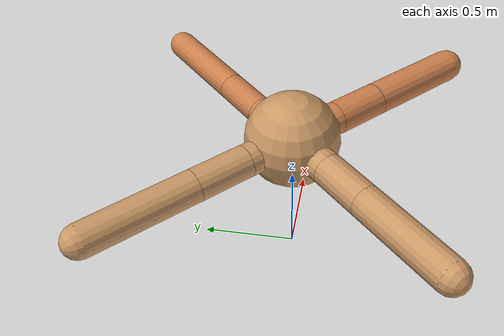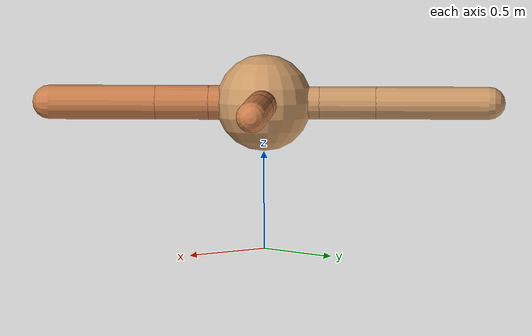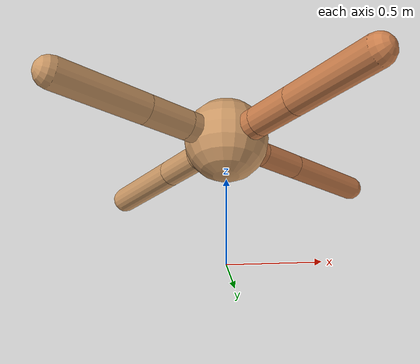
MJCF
<?xml version="1.0" ?>
<mujoco model="ant">

	<compiler angle="degree" coordinate="local" inertiafromgeom="true"/>

	<option integrator="RK4" timestep="0.01"/>

	<custom>

		<numeric data="0.0 0.0 0.55 1.0 0.0 0.0 0.0 0.0 1.0 0.0 -1.0 0.0 -1.0 0.0 1.0" name="init_qpos"/>

	</custom>

	<default>

		<joint armature="1" damping="1" limited="true"/>

		<geom conaffinity="0" condim="3" density="5.0" friction="1.5 0.1 0.1" margin="0.01" rgba="0.8 0.6 0.4 1"/>

	</default>

	<worldbody>

		<body name="torso" pos="0 0 0.75">

			<geom name="torso_geom" pos="0 0 0" size="0.2464734618221793" type="sphere"/>

			<!--joint armature="0" damping="0" limited="false" margin="0.01" name="root" pos="0 0 0" type="free"/-->

			<body name="front_left_leg" pos="0 0 0">

				<geom fromto="0 0 0 0.2 0.2 0" name="aux_1_geom" size="0.07559089030363135" type="capsule" rgba=".8 .5 .3 1"/>

				<body name="aux_1" pos="0.2 0.2 0">

					<joint axis="0 0 1" name="hip_1" pos="0.0 0.0 0.0" range="-40 40" type="hinge"/>

					<geom fromto="0 0 0 0.19031420227976847 0.19031420227976847 0" name="left_leg_geom" size="0.07559089030363135" type="capsule" rgba=".8 .5 .3 1"/>

					<body pos="0.19031420227976847 0.19031420227976847 0" name="front_left_foot">

						<joint axis="-1 1 0" name="ankle_1" pos="0.0 0.0 0.0" range="30 100" type="hinge"/>

						<geom fromto="0 0 0 0.38062840455953695 0.38062840455953695 0" name="left_ankle_geom" size="0.07559089030363135" type="capsule" rgba=".8 .5 .3 1"/>

					</body>

				</body>

			</body>

			<body name="front_right_leg" pos="0 0 0">

				<geom fromto="0 0 0 -0.2 0.2 0" name="aux_2_geom" size="0.08330095990342411" type="capsule"/>

				<body name="aux_2" pos="-0.2 0.2 0">

					<joint axis="0 0 1" name="hip_2" pos="0.0 0.0 0.0" range="-40 40" type="hinge"/>

					<geom fromto="0 0 0 -0.20375535817456494 0.20375535817456494 0" name="right_leg_geom" size="0.08330095990342411" type="capsule"/>

					<body pos="-0.20375535817456494 0.20375535817456494 0" name="front_right_foot">

						<joint axis="1 1 0" name="ankle_2" pos="0.0 0.0 0.0" range="-100 -30" type="hinge"/>

						<geom fromto="0 0 0 -0.4075107163491299 0.4075107163491299 0" name="right_ankle_geom" size="0.08330095990342411" type="capsule"/>

					</body>

				</body>

			</body>

			<body name="left_back_leg" pos="0 0 0">

				<geom fromto="0 0 0 -0.2 -0.2 0" name="aux_3_geom" size="0.08669945948958818" type="capsule"/>

				<body name="aux_3" pos="-0.2 -0.2 0">

					<joint axis="0 0 1" name="hip_3" pos="0.0 0.0 0.0" range="-40 40" type="hinge"/>

					<geom fromto="0 0 0 -0.18970946360762098 -0.18970946360762098 0" name="back_leg_geom" size="0.08669945948958818" type="capsule"/>

					<body pos="-0.18970946360762098 -0.18970946360762098 0" name="left_back_foot">

						<joint axis="-1 1 0" name="ankle_3" pos="0.0 0.0 0.0" range="-100 -30" type="hinge"/>

						<geom fromto="0 0 0 -0.37941892721524195 -0.37941892721524195 0" name="third_ankle_geom" size="0.08669945948958818" type="capsule"/>

					</body>

				</body>

			</body>

			<body name="right_back_leg" pos="0 0 0">

				<geom fromto="0 0 0 0.2 -0.2 0" name="aux_4_geom" size="0.08775280142676621" type="capsule" rgba=".8 .5 .3 1"/>

				<body name="aux_4" pos="0.2 -0.2 0">

					<joint axis="0 0 1" name="hip_4" pos="0.0 0.0 0.0" range="-40 40" type="hinge"/>

					<geom fromto="0 0 0 0.1927151992087709 -0.1927151992087709 0" name="rightback_leg_geom" size="0.08775280142676621" type="capsule" rgba=".8 .5 .3 1"/>

					<body pos="0.1927151992087709 -0.1927151992087709 0" name="right_back_foot">

						<joint axis="1 1 0" name="ankle_4" pos="0.0 0.0 0.0" range="30 100" type="hinge"/>

						<geom fromto="0 0 0 0.3854303984175418 -0.3854303984175418 0" name="fourth_ankle_geom" size="0.08775280142676621" type="capsule" rgba=".8 .5 .3 1"/>

					</body>

				</body>

			</body>

		</body>

	</worldbody>

	<actuator>

		<motor ctrllimited="true" ctrlrange="-1.0 1.0" joint="hip_4" gear="150"/>

		<motor ctrllimited="true" ctrlrange="-1.0 1.0" joint="ankle_4" gear="150"/>

		<motor ctrllimited="true" ctrlrange="-1.0 1.0" joint="hip_1" gear="150"/>

		<motor ctrllimited="true" ctrlrange="-1.0 1.0" joint="ankle_1" gear="150"/>

		<motor ctrllimited="true" ctrlrange="-1.0 1.0" joint="hip_2" gear="150"/>

		<motor ctrllimited="true" ctrlrange="-1.0 1.0" joint="ankle_2" gear="150"/>

		<motor ctrllimited="true" ctrlrange="-1.0 1.0" joint="hip_3" gear="150"/>

		<motor ctrllimited="true" ctrlrange="-1.0 1.0" joint="ankle_3" gear="150"/>

	</actuator>

</mujoco>
